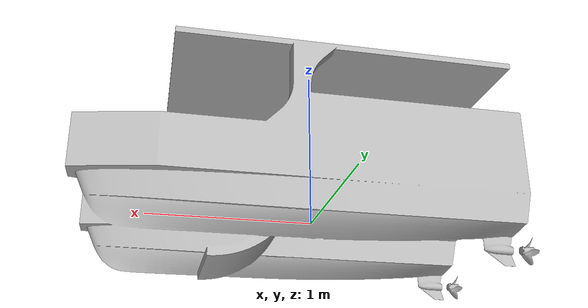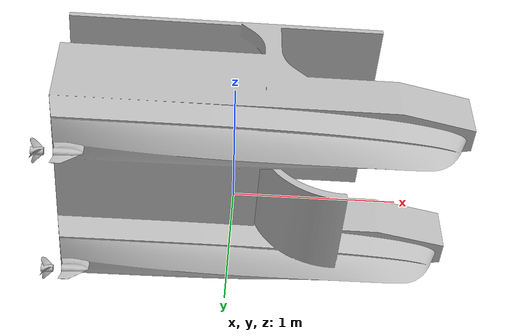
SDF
<?xml version="1.0" ?>
<sdf version="1.9">
  <model name="boat_1">
    <static>false</static>
    <self_collide>false</self_collide>

    <!-- Publish odometry (world pose of the boat) -->
    <plugin filename="ignition-gazebo-odometry-publisher-system"
            name="ignition::gazebo::systems::OdometryPublisher">
      <odom_frame>world</odom_frame>
      <robot_base_frame>boat_1/hull_1</robot_base_frame>
      <odom_topic>/boat_1/odom</odom_topic>
      <odom_publish_frequency>50</odom_publish_frequency>
    </plugin>

    <link name="hull_1">
      <inertial>
        <pose>0.055 0 -0.5 0 0 0</pose>
        <mass>2170</mass>
        <inertia>
          <ixx>5000</ixx> <iyy>5000</iyy> <izz>5000</izz>
          <ixy>0</ixy><ixz>0</ixz><iyz>0</iyz>
        </inertia>
      </inertial>

      <velocity_decay>
          <linear>0.3</linear>
          <angular>100.0</angular>
      </velocity_decay>

      <collision name="hull_collision">
        <geometry><box><size>2 1.33 1.7</size></box></geometry>
      </collision>

      <collision name="stabilizer_left">
        <pose>0 1.0 0 0 0 0</pose> <geometry><box><size>1.0 0.1 0.1</size></box></geometry>
      </collision>

      <collision name="stabilizer_right">
        <pose>0 -1.0 0 0 0 0</pose> <geometry><box><size>1.0 0.1 0.1</size></box></geometry>
      </collision>

      <visual name="hull_visual">
        <geometry><mesh><uri>model://boat_1/meshes/boat.stl</uri></mesh></geometry>
      </visual>

      <link_property>
        <center_of_volume>0.8 0 0.4</center_of_volume>
        <volume>3.5</volume>
      </link_property>
    </link>

    <link name="propeller_left">
      <pose>-1.1 -0.5 -0.24 0 0 0</pose>
      <gravity>false</gravity>
      <inertial>
        <mass>50.0</mass>
        <inertia><ixx>0.1</ixx><iyy>0.1</iyy><izz>0.1</izz></inertia>
      </inertial>
      <visual name="prop_left_visual">
        <geometry><mesh><uri>model://boat_1/meshes/prop.stl</uri></mesh></geometry>
      </visual>
    </link>

    <link name="propeller_right">
      <pose>-1.1 0.5 -0.24 0 0 0</pose>
      <gravity>false</gravity>
      <inertial>
        <mass>50.0</mass>
        <inertia><ixx>0.1</ixx><iyy>0.1</iyy><izz>0.1</izz></inertia>
      </inertial>
      <visual name="prop_right_visual">
        <geometry><mesh><uri>model://boat_1/meshes/prop.stl</uri></mesh></geometry>
      </visual>
    </link>

    <joint name="prop_joint_left" type="revolute">
      <parent>hull_1</parent>
      <child>propeller_left</child>
      <axis>
        <xyz>1 0 0</xyz>
        <limit><lower>-1e16</lower><upper>1e16</upper></limit>
      </axis>
    </joint>

    <joint name="prop_joint_right" type="revolute">
      <parent>hull_1</parent>
      <child>propeller_right</child>
      <axis>
        <xyz>-1 0 0</xyz>
        <limit><lower>-1e16</lower><upper>1e16</upper></limit>
      </axis>
    </joint>

    <plugin filename="libignition-gazebo-thruster-system.so"
            name="ignition::gazebo::systems::Thruster">
      <joint_name>prop_joint_left</joint_name>
      <namespace>boat_1</namespace>
      <topic>left_thrust_cmd</topic>
      <thrust_coefficient>0.1</thrust_coefficient>
      <fluid_density>1000</fluid_density>
      <propeller_diameter>0.2</propeller_diameter>
      <velocity_control>true</velocity_control>
      <p_gain>0.1</p_gain>
    </plugin>

    <plugin filename="libignition-gazebo-thruster-system.so"
            name="ignition::gazebo::systems::Thruster">
      <joint_name>prop_joint_right</joint_name>
      <namespace>boat_1</namespace>
      <topic>right_thrust_cmd</topic>
      <thrust_coefficient>0.1</thrust_coefficient>
      <fluid_density>1000</fluid_density>
      <propeller_diameter>0.2</propeller_diameter>
      <velocity_control>true</velocity_control>
      <p_gain>0.1</p_gain>
    </plugin>

    <plugin filename="libignition-gazebo-hydrodynamics-system.so"
            name="ignition::gazebo::systems::Hydrodynamics">
      <link_name>hull_1</link_name>
      <linear_drag_coefficients>1.0 50 50</linear_drag_coefficients>
      <angular_drag_coefficients>5000 5000 5000</angular_drag_coefficients>
    </plugin>

          <link name="lidar_link">
            <pose>0.8 0 1.0 0 0 0</pose> <inertial>
              <mass>0.1</mass>
              <inertia><ixx>0.001</ixx><iyy>0.001</iyy><izz>0.001</izz></inertia>
            </inertial>

            <visual name="lidar_visual">
              <geometry>
                <cylinder><radius>0.05</radius><length>0.1</length></cylinder>
              </geometry>
              <material><diffuse>0 0 0 1</diffuse></material>
            </visual>

            <sensor name="front_lidar" type="gpu_lidar">
              <pose>0 0 0 0 0 0</pose>
              <topic>scan</topic>
              <update_rate>10</update_rate>
              <ray>
                <scan>
                  <horizontal>
                    <samples>720</samples> <resolution>1</resolution>
                    <min_angle>-3.14159</min_angle> <max_angle>3.14159</max_angle>
                  </horizontal>
                  <vertical>
                    <samples>1</samples> <resolution>1</resolution>
                    <min_angle>0.0</min_angle>
                    <max_angle>0.0</max_angle>
                  </vertical>
                </scan>
                <range>
                  <min>0.5</min> <max>50.0</max>
                </range>
              </ray>
              <visualize>false</visualize>
            </sensor>
          </link>

          <joint name="lidar_joint" type="fixed">
            <parent>hull_1</parent>
            <child>lidar_link</child>
          </joint>

  </model>
</sdf>
